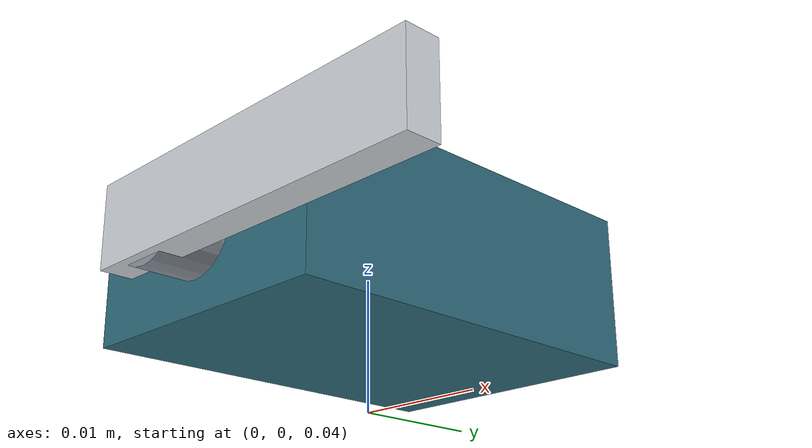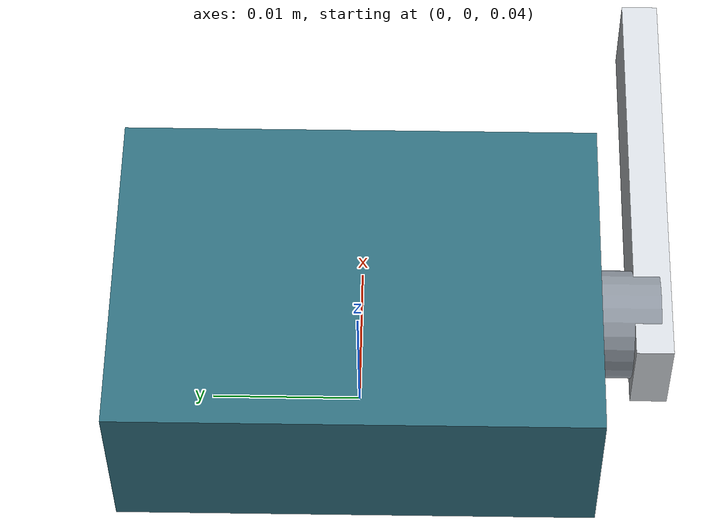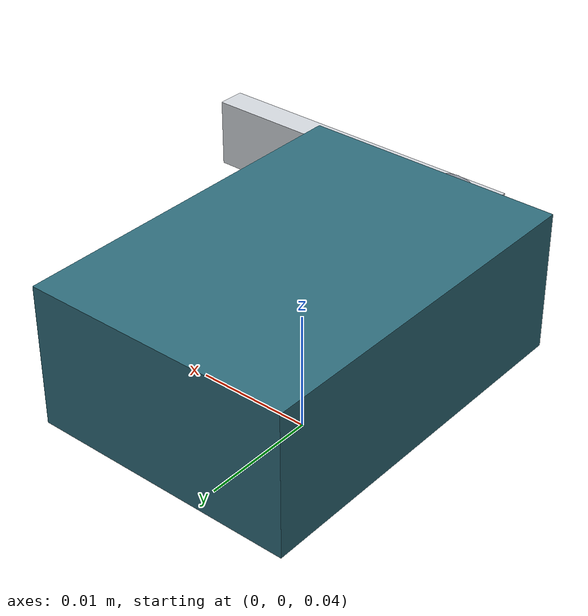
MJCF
<mujoco model="sg90">
  <compiler angle="radian" coordinate="local" autolimits="true"/>
  <option timestep="0.001" gravity="0 0 -9.81" integrator="implicitfast" iterations="50"/>

  <default>
    <default class="sg90">
      <!--
        damping: calibrated approx τ_stall/ω_nl = 0.15/10.47 (PARAMS.md)
        armature: assumption — numerical stability only
      -->
      <joint limited="true" damping="0.01432" armature="1e-6" frictionloss="0"/>
      <position kp="3" kv="0.01" forcerange="-0.15 0.15" ctrlrange="-1.5708 1.5708"/>
      <geom friction="0.6 0.01 0.001" condim="3" density="0"/>
    </default>
  </default>

  <asset>
    <material name="sg90_housing" rgba="0.18 0.42 0.48 1" specular="0.25" shininess="0.35"/>
    <material name="sg90_horn" rgba="0.82 0.84 0.86 1" specular="0.4" shininess="0.5"/>
    <material name="sg90_hub" rgba="0.55 0.58 0.62 1" specular="0.35" shininess="0.4"/>
  </asset>

  <worldbody>
    <body name="sg90" childclass="sg90" pos="0 0 0.05" euler="1.5708 0 0">
      <inertial pos="0 0 0" mass="0.009" diaginertia="8.252e-7 1.090e-6 4.741e-7"/>
      <geom name="sg90_housing" type="box" size="0.0111 0.0059 0.0155"
            material="sg90_housing" priority="1"/>

      <!-- Output shaft at top face (+Z local). Travel ±90° per datasheet. -->
      <body name="sg90_rotor" pos="0 0 0.0155">
        <joint name="sg90_joint" type="hinge" axis="0 0 1" range="-1.5708 1.5708"/>
        <!-- Horn mass/inertia: assumption (PARAMS.md) — not datasheet-split. -->
        <inertial pos="0.01 0 0.002" mass="0.0005" diaginertia="2.0e-9 4.5e-8 4.5e-8"/>
        <geom name="sg90_hub" type="cylinder" size="0.0035 0.002" pos="0 0 0.002"
              material="sg90_hub"/>
        <geom name="sg90_horn" type="box" size="0.014 0.003 0.0012" pos="0.01 0 0.0035"
              material="sg90_horn"/>
      </body>
    </body>
  </worldbody>

  <actuator>
    <position name="sg90" joint="sg90_joint" class="sg90"/>
  </actuator>
</mujoco>
